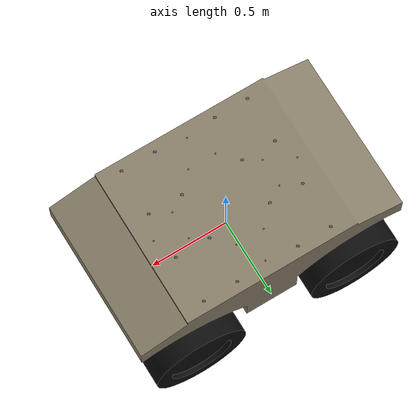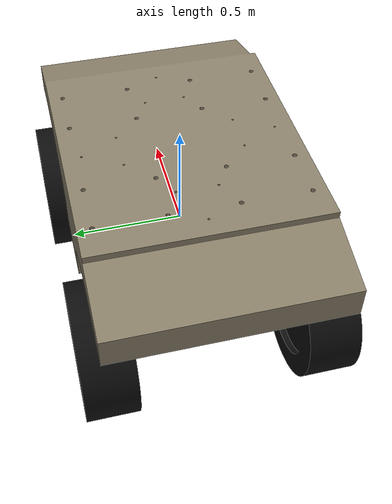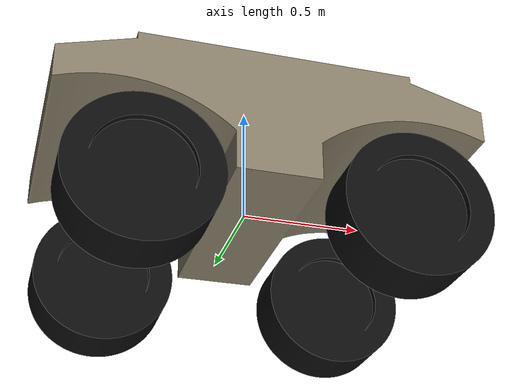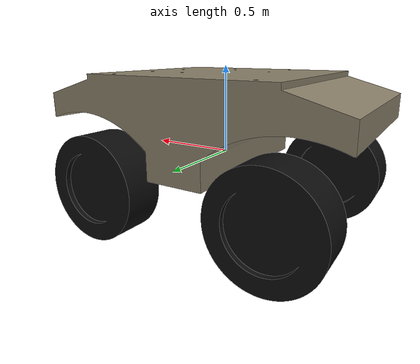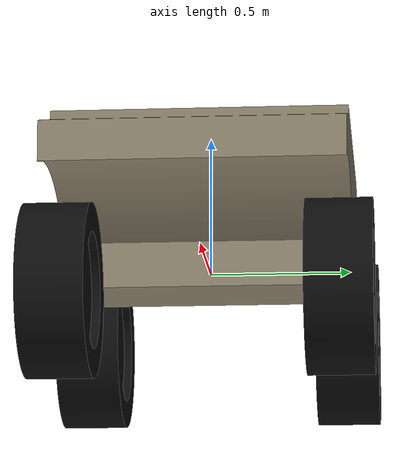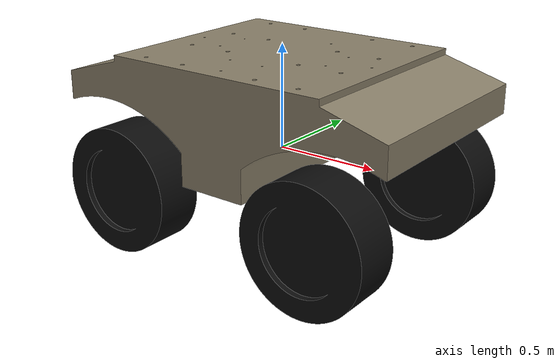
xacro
<?xml version="1.0"?>
<robot xmlns:xacro="http://www.ros.org/wiki/xacro" name="shark_barakuda">
    <!-- Colors-->
    <material name="sand">
        <color rgba="0.535 0.496 0.410 1.0"/>
    </material>
    <material name="black">
        <color rgba="0.05 0.05 0.05 1.0"/>
    </material>

        <!-- Base Link -->
        <link name="base_link">
            <origin rpy="0 0 0" xyz="0 0 0"/>
        </link>

        <!-- Footprint -->
        <link name="base_footprint"/>
        <joint name="base_to_foot_print" type="fixed">
            <parent link="base_link"/>
            <child link="base_footprint"/>
            <origin xyz="0 0 -0.4625"/>
        </joint>

        <!-- Top Plate -->
        <link name="top_plate_link">
            <visual>
                <geometry>
                    <mesh filename="package://barakuda_description/meshes/chassis.stl"/>
                </geometry>
                <material name="sand"/>
            </visual>
        </link>

        <joint name="base_to_top_plate" type="fixed">
            <parent link="base_link"/>
            <child link="top_plate_link"/>
            <origin xyz="0 0 0.4625"/>
        </joint>

        <!-- Front Left Wheel -->
        <link name="front_left_wheel_link">
            <visual>
                <geometry>
                    <mesh filename="package://barakuda_description/meshes/roue.stl"/>
                </geometry>
                <material name="black"/>
            </visual>
        </link>
        <joint name="base_to_front_left_wheel" type="fixed">
            <parent link="base_link"/>
            <child link="front_left_wheel_link"/>
            <origin rpy="-${pi/2} 0 0" xyz="0.525 0.3625 -0.1625"/>
        </joint>

        <!-- Front Right Wheel -->
        <link name="front_right_wheel_link">
            <visual>
                <geometry>
                    <mesh filename="package://barakuda_description/meshes/roue.stl"/>
                </geometry>
                <material name="black"/>
            </visual>
        </link>
        <joint name="base_to_front_right_wheel" type="fixed">
            <parent link="base_link"/>
            <child link="front_right_wheel_link"/>
            <origin rpy="${pi/2} 0 0" xyz="0.525 -0.3625 -0.1625"/>
        </joint>

        <!-- Rear Left Wheel -->
        <link name="rear_left_wheel_link">
            <visual>
                <geometry>
                    <mesh filename="package://barakuda_description/meshes/roue.stl"/>
                </geometry>
                <material name="black"/>
            </visual>
        </link>
        <joint name="base_to_rear_left_wheel" type="fixed">
            <parent link="base_link"/>
            <child link="rear_left_wheel_link"/>
            <origin rpy="-${pi/2} 0 0" xyz="-0.525 0.3625 -0.1625"/>
        </joint>

        <!-- Rear Right Wheel -->
        <link name="rear_right_wheel_link">
            <visual>
                <geometry>
                    <mesh filename="package://barakuda_description/meshes/roue.stl"/>
                </geometry>
                <material name="black"/>
            </visual>
        </link>
        <joint name="base_to_rear_right_wheel" type="fixed">
            <parent link="base_link"/>
            <child link="rear_right_wheel_link"/>
            <origin rpy="${pi/2} 0 0" xyz="-0.525 -0.3625 -0.1625"/>
        </joint>
</robot>
